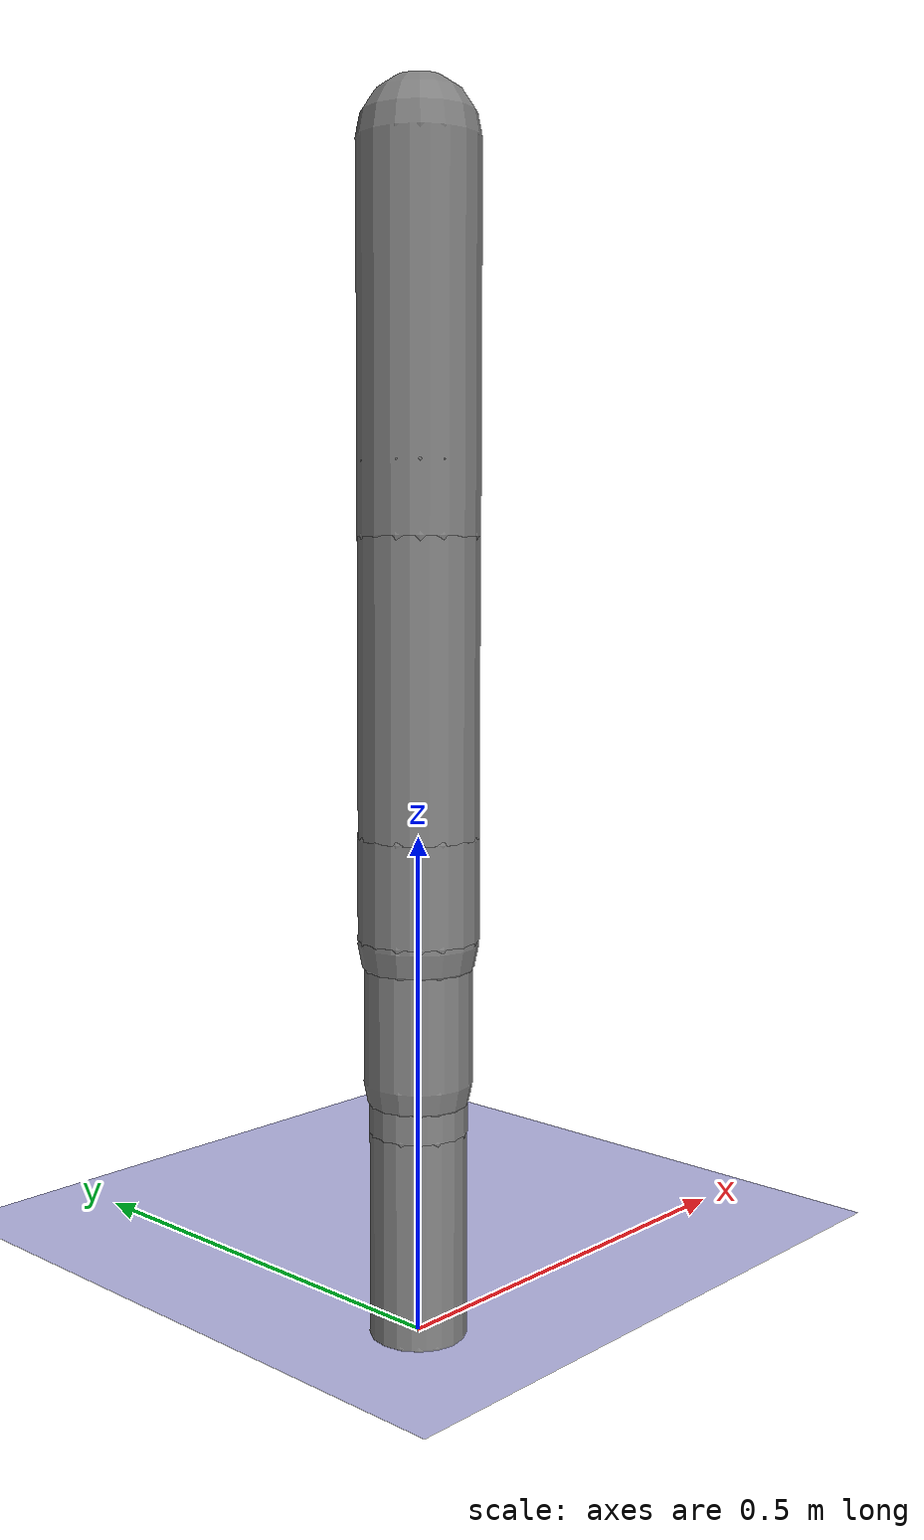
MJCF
<?xml version='1.0' encoding='UTF-8'?>
<mujoco model="robot_model">
  <worldbody>
    <light name="light" pos="0 -3 10" dir="0 0.5 -1" diffuse=".8 .8 .8" specular="0.1 0.1 0.1"/>
    <geom name="floor" type="plane" size="10.0 10.0 0.1" pos="0 0 0" rgba="0.8 0.8 1 1"/>
    <body name="limb0" pos="0 0 0">
      <geom type="capsule" fromto="0 0 0 0 0 0.3118052695334222" size="0.048785706301360685" density="731.85066019597"/>
      <site type="sphere" size="0.01" name="limb0_site0" pos="0 0 0.2574498780485383"/>
      <site type="sphere" size="0.01" name="limb0_site1" pos="0 0 0.054200541464633455"/>
      <freejoint name="limb0_root"/>
      <body name="limb1" pos="0 0 0.2574498780485383">
        <geom type="capsule" fromto="0 0 0 0 0 0.3600789675341075" size="0.05407429494422454" density="619.3655655626594"/>
        <site type="sphere" size="0.01" name="limb1_site0" pos="0 0 0.14348370626259008"/>
        <body name="limb2" pos="0 0 0.14348370626259008">
          <geom type="capsule" fromto="0 0 0 0 0 0.1" size="0.06" density="1153.580284259589"/>
          <site type="sphere" size="0.01" name="limb2_site0" pos="0 0 0.08584434272995117"/>
          <site type="sphere" size="0.01" name="limb2_site1" pos="0 0 0.03318236092050132"/>
          <body name="limb3" pos="0 0 0.08584434272995117">
            <geom type="capsule" fromto="0 0 0 0 0 0.3246346816300574" size="0.027985800535247497" density="877.8764988614424"/>
            <site type="sphere" size="0.01" name="limb3_site0" pos="0 0 0.30592291138675143"/>
            <body name="limb4" pos="0 0 0.30592291138675143">
              <geom type="capsule" fromto="0 0 0 0 0 0.36951162147997846" size="0.06" density="1109.9477975887687"/>
              <joint name="joint_limb3_limb4_0" type="hinge" axis="0 0 1" range="-32.23675465955068 32.23675465955068" damping="5.0"/>
            </body>
            <joint name="joint_limb2_limb3_0" type="hinge" axis="1 0 0" range="-102.98912811609488 102.98912811609488" damping="5.0"/>
          </body>
          <body name="limb5" pos="0 0 0.03318236092050132">
            <geom type="capsule" fromto="0 0 0 0 0 0.2443513550091924" size="0.055702053706194035" density="821.1115168072832"/>
            <joint name="joint_limb2_limb5_0" type="hinge" axis="0 0 1" range="-71.40473736305398 71.40473736305398" damping="5.0"/>
          </body>
          <joint name="joint_limb1_limb2_0" type="hinge" axis="1 0 0" range="-76.76461954822437 76.76461954822437" damping="5.0"/>
        </body>
        <joint name="joint_limb0_limb1_0" type="hinge" axis="0 1 0" range="-120.0 120.0" damping="5.0"/>
      </body>
      <body name="limb6" pos="0 0 0.054200541464633455">
        <geom type="capsule" fromto="0 0 0 0 0 0.20848267310478638" size="0.044649670011882046" density="708.121859381018"/>
        <site type="sphere" size="0.01" name="limb6_site0" pos="0 0 0.03808324873440217"/>
        <site type="sphere" size="0.01" name="limb6_site1" pos="0 0 0.15308942677993284"/>
        <body name="limb7" pos="0 0 0.03808324873440217">
          <geom type="capsule" fromto="0 0 0 0 0 0.49506834786402915" size="0.03678532303791788" density="732.350866634508"/>
          <site type="sphere" size="0.01" name="limb7_site0" pos="0 0 0.48864896668293684"/>
          <body name="limb8" pos="0 0 0.48864896668293684">
            <geom type="capsule" fromto="0 0 0 0 0 0.14792642304865472" size="0.05004112571134879" density="415.71080220357624"/>
            <site type="sphere" size="0.01" name="limb8_site0" pos="0 0 0.10533503060879834"/>
            <body name="limb9" pos="0 0 0.10533503060879834">
              <geom type="capsule" fromto="0 0 0 0 0 0.20341471850922796" size="0.027365808771741513" density="1068.3725583502405"/>
              <joint name="joint_limb8_limb9_0" type="hinge" axis="0 0 1" range="-104.59573439320407 104.59573439320407" damping="5.0"/>
            </body>
            <joint name="joint_limb7_limb8_0" type="hinge" axis="0 1 0" range="-101.73901430779064 101.73901430779064" damping="5.0"/>
          </body>
          <joint name="joint_limb6_limb7_0" type="hinge" axis="0 0 1" range="-98.208106043741 98.208106043741" damping="5.0"/>
        </body>
        <body name="limb10" pos="0 0 0.15308942677993284">
          <geom type="capsule" fromto="0 0 0 0 0 0.23103065752325797" size="0.04901004816607724" density="644.8409758258897"/>
          <site type="sphere" size="0.01" name="limb10_site0" pos="0 0 0.18815467307351175"/>
          <body name="limb11" pos="0 0 0.18815467307351175">
            <geom type="capsule" fromto="0 0 0 0 0 0.4676759956951593" size="0.05966738873335552" density="631.8729198528299"/>
            <joint name="joint_limb10_limb11_0" type="hinge" axis="1 0 0" range="-120.0 120.0" damping="5.0"/>
          </body>
          <joint name="joint_limb6_limb10_0" type="hinge" axis="1 0 0" range="-52.24607575631726 52.24607575631726" damping="5.0"/>
        </body>
        <joint name="joint_limb0_limb6_0" type="hinge" axis="0 0 1" range="-96.21716630603876 96.21716630603876" damping="5.0"/>
      </body>
    </body>
  </worldbody>
  <actuator>
    <position name="position_actuator_joint_limb0_limb1_0" joint="joint_limb0_limb1_0" gear="1.2117592836879352" inheritrange="1" kp="10.0"/>
    <position name="position_actuator_joint_limb1_limb2_0" joint="joint_limb1_limb2_0" gear="2.0" inheritrange="1" kp="10.0"/>
    <position name="position_actuator_joint_limb2_limb3_0" joint="joint_limb2_limb3_0" gear="1.285844846340357" inheritrange="1" kp="10.0"/>
    <position name="position_actuator_joint_limb3_limb4_0" joint="joint_limb3_limb4_0" gear="0.6866428973515241" inheritrange="1" kp="10.0"/>
    <position name="position_actuator_joint_limb2_limb5_0" joint="joint_limb2_limb5_0" gear="1.1987147143813428" inheritrange="1" kp="10.0"/>
    <position name="position_actuator_joint_limb0_limb6_0" joint="joint_limb0_limb6_0" gear="1.7817465554683207" inheritrange="1" kp="10.0"/>
    <position name="position_actuator_joint_limb6_limb7_0" joint="joint_limb6_limb7_0" gear="0.9075785035297382" inheritrange="1" kp="10.0"/>
    <position name="position_actuator_joint_limb7_limb8_0" joint="joint_limb7_limb8_0" gear="0.6855578824392156" inheritrange="1" kp="10.0"/>
    <position name="position_actuator_joint_limb8_limb9_0" joint="joint_limb8_limb9_0" gear="0.7049780118299882" inheritrange="1" kp="10.0"/>
    <position name="position_actuator_joint_limb6_limb10_0" joint="joint_limb6_limb10_0" gear="0.732217334990693" inheritrange="1" kp="10.0"/>
    <position name="position_actuator_joint_limb10_limb11_0" joint="joint_limb10_limb11_0" gear="1.53341547782376" inheritrange="1" kp="10.0"/>
  </actuator>
</mujoco>
